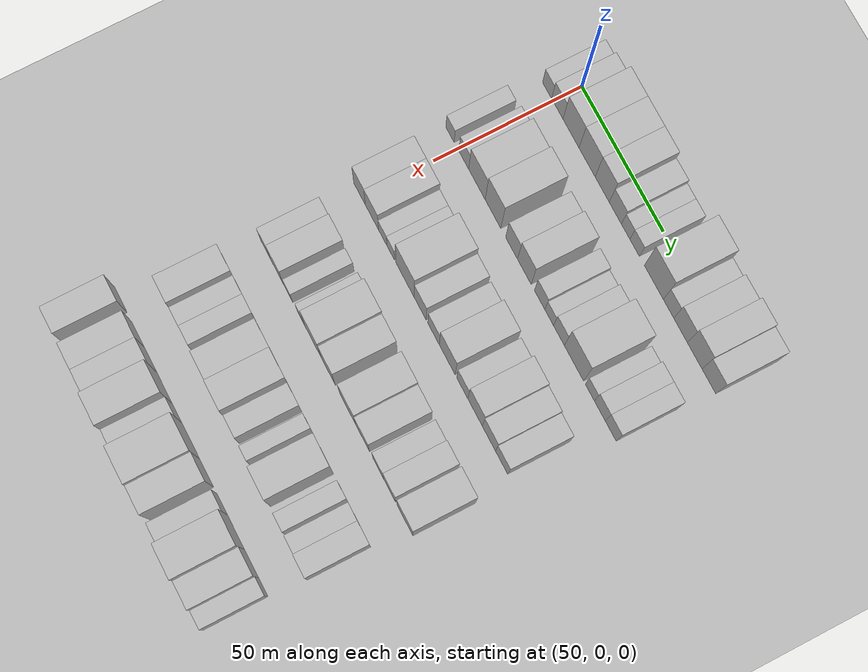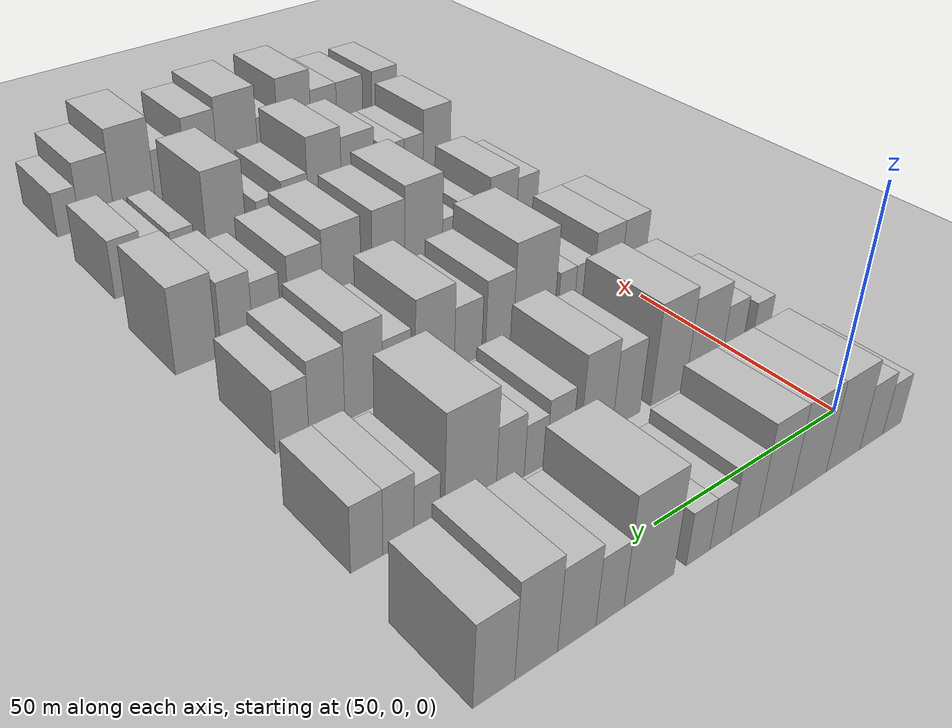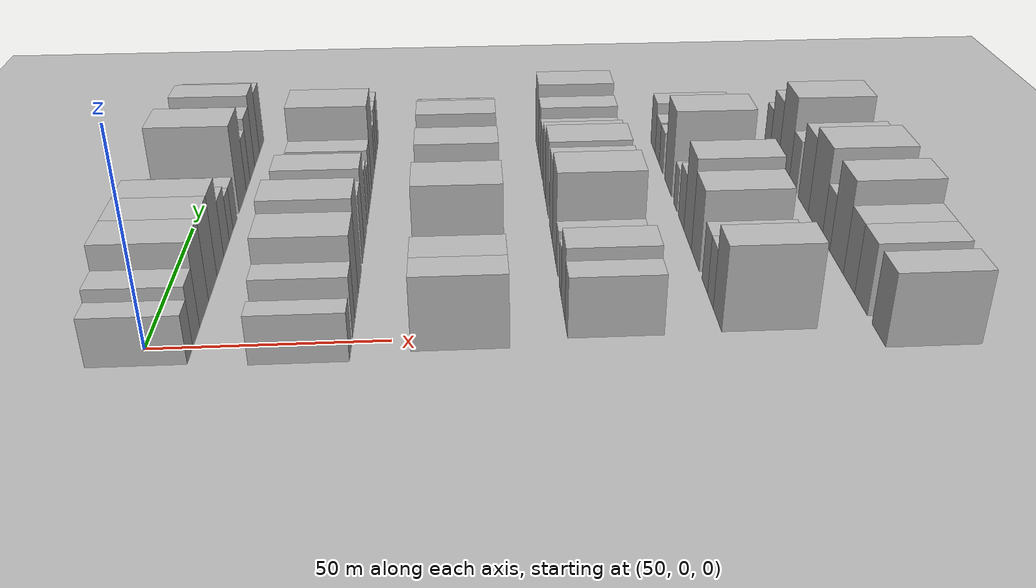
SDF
<sdf version="1.6">
 <world name="default">
  <include><name>ground_plane_1</name><uri>model://HANNAS_ground_plane</uri></include>
  <include>
   <name>ground_plane_2</name>
   <uri>model://HANNAS_ground_plane</uri>
   <pose>100 0 0  0 0 0</pose>
  </include>
  <model name="building_63">
   <static>1</static>
   <pose>50.0000 -3.6227 0 0.000000 0.000000 0.000000</pose>
   <link name="link">
    <pose>0 0 6.00 0 0 0</pose>
    <collision name="collision"><geometry><box><size>20.0000 5.6800 12.0000</size></box></geometry></collision>
    <visual name="visual">
     <cast_shadows>0</cast_shadows>
     <geometry><box><size>20.0000 5.6800 12.0000</size></box></geometry>
     <material>
      <script>
       <uri>model://HANNAS_wall/materials/scripts</uri>
       <uri>model://HANNAS_wall/materials/textures</uri>
       <name>vrc/HANNAS_wall</name>
      </script>
     </material>
    </visual>
   </link>
  </model>
  <model name="building_64">
   <static>1</static>
   <pose>50.0000 2.7702 0 0.000000 0.000000 0.000000</pose>
   <link name="link">
    <pose>0 0 7.50 0 0 0</pose>
    <collision name="collision"><geometry><box><size>20.0000 7.1057 15.0000</size></box></geometry></collision>
    <visual name="visual">
     <cast_shadows>0</cast_shadows>
     <geometry><box><size>20.0000 7.1057 15.0000</size></box></geometry>
     <material>
      <script>
       <uri>model://HANNAS_wall/materials/scripts</uri>
       <uri>model://HANNAS_wall/materials/textures</uri>
       <name>vrc/HANNAS_wall</name>
      </script>
     </material>
    </visual>
   </link>
  </model>
  <model name="building_65">
   <static>1</static>
   <pose>50.0000 11.3239 0 0.000000 0.000000 0.000000</pose>
   <link name="link">
    <pose>0 0 10.50 0 0 0</pose>
    <collision name="collision"><geometry><box><size>20.0000 10.0018 21.0000</size></box></geometry></collision>
    <visual name="visual">
     <cast_shadows>0</cast_shadows>
     <geometry><box><size>20.0000 10.0018 21.0000</size></box></geometry>
     <material>
      <script>
       <uri>model://HANNAS_wall/materials/scripts</uri>
       <uri>model://HANNAS_wall/materials/textures</uri>
       <name>vrc/HANNAS_wall</name>
      </script>
     </material>
    </visual>
   </link>
  </model>
  <model name="building_66">
   <static>1</static>
   <pose>50.0000 21.3238 0 0.000000 0.000000 0.000000</pose>
   <link name="link">
    <pose>0 0 10.50 0 0 0</pose>
    <collision name="collision"><geometry><box><size>20.0000 9.9979 21.0000</size></box></geometry></collision>
    <visual name="visual">
     <cast_shadows>0</cast_shadows>
     <geometry><box><size>20.0000 9.9979 21.0000</size></box></geometry>
     <material>
      <script>
       <uri>model://HANNAS_wall/materials/scripts</uri>
       <uri>model://HANNAS_wall/materials/textures</uri>
       <name>vrc/HANNAS_wall</name>
      </script>
     </material>
    </visual>
   </link>
  </model>
  <model name="building_67">
   <static>1</static>
   <pose>50.0000 30.6566 0 0.000000 0.000000 0.000000</pose>
   <link name="link">
    <pose>0 0 10.50 0 0 0</pose>
    <collision name="collision"><geometry><box><size>20.0000 8.6677 21.0000</size></box></geometry></collision>
    <visual name="visual">
     <cast_shadows>0</cast_shadows>
     <geometry><box><size>20.0000 8.6677 21.0000</size></box></geometry>
     <material>
      <script>
       <uri>model://HANNAS_wall/materials/scripts</uri>
       <uri>model://HANNAS_wall/materials/textures</uri>
       <name>vrc/HANNAS_wall</name>
      </script>
     </material>
    </visual>
   </link>
  </model>
  <model name="building_68">
   <static>1</static>
   <pose>50.0000 38.7011 0 0.000000 0.000000 0.000000</pose>
   <link name="link">
    <pose>0 0 7.50 0 0 0</pose>
    <collision name="collision"><geometry><box><size>20.0000 7.4212 15.0000</size></box></geometry></collision>
    <visual name="visual">
     <cast_shadows>0</cast_shadows>
     <geometry><box><size>20.0000 7.4212 15.0000</size></box></geometry>
     <material>
      <script>
       <uri>model://HANNAS_wall/materials/scripts</uri>
       <uri>model://HANNAS_wall/materials/textures</uri>
       <name>vrc/HANNAS_wall</name>
      </script>
     </material>
    </visual>
   </link>
  </model>
  <model name="building_69">
   <static>1</static>
   <pose>50.0000 44.9945 0 0.000000 0.000000 0.000000</pose>
   <link name="link">
    <pose>0 0 6.00 0 0 0</pose>
    <collision name="collision"><geometry><box><size>20.0000 5.1658 12.0000</size></box></geometry></collision>
    <visual name="visual">
     <cast_shadows>0</cast_shadows>
     <geometry><box><size>20.0000 5.1658 12.0000</size></box></geometry>
     <material>
      <script>
       <uri>model://HANNAS_wall/materials/scripts</uri>
       <uri>model://HANNAS_wall/materials/textures</uri>
       <name>vrc/HANNAS_wall</name>
      </script>
     </material>
    </visual>
   </link>
  </model>
  <model name="building_70">
   <static>1</static>
   <pose>50.0000 50.4644 0 0.000000 0.000000 0.000000</pose>
   <link name="link">
    <pose>0 0 6.00 0 0 0</pose>
    <collision name="collision"><geometry><box><size>20.0000 5.7740 12.0000</size></box></geometry></collision>
    <visual name="visual">
     <cast_shadows>0</cast_shadows>
     <geometry><box><size>20.0000 5.7740 12.0000</size></box></geometry>
     <material>
      <script>
       <uri>model://HANNAS_wall/materials/scripts</uri>
       <uri>model://HANNAS_wall/materials/textures</uri>
       <name>vrc/HANNAS_wall</name>
      </script>
     </material>
    </visual>
   </link>
  </model>
  <model name="building_71">
   <static>1</static>
   <pose>50.0000 62.0729 0 0.000000 0.000000 0.000000</pose>
   <link name="link">
    <pose>0 0 12.00 0 0 0</pose>
    <collision name="collision"><geometry><box><size>20.0000 11.4429 24.0000</size></box></geometry></collision>
    <visual name="visual">
     <cast_shadows>0</cast_shadows>
     <geometry><box><size>20.0000 11.4429 24.0000</size></box></geometry>
     <material>
      <script>
       <uri>model://HANNAS_wall/materials/scripts</uri>
       <uri>model://HANNAS_wall/materials/textures</uri>
       <name>vrc/HANNAS_wall</name>
      </script>
     </material>
    </visual>
   </link>
  </model>
  <model name="building_72">
   <static>1</static>
   <pose>50.0000 70.9119 0 0.000000 0.000000 0.000000</pose>
   <link name="link">
    <pose>0 0 7.50 0 0 0</pose>
    <collision name="collision"><geometry><box><size>20.0000 6.2350 15.0000</size></box></geometry></collision>
    <visual name="visual">
     <cast_shadows>0</cast_shadows>
     <geometry><box><size>20.0000 6.2350 15.0000</size></box></geometry>
     <material>
      <script>
       <uri>model://HANNAS_wall/materials/scripts</uri>
       <uri>model://HANNAS_wall/materials/textures</uri>
       <name>vrc/HANNAS_wall</name>
      </script>
     </material>
    </visual>
   </link>
  </model>
  <model name="building_73">
   <static>1</static>
   <pose>50.0000 78.0997 0 0.000000 0.000000 0.000000</pose>
   <link name="link">
    <pose>0 0 9.00 0 0 0</pose>
    <collision name="collision"><geometry><box><size>20.0000 8.1406 18.0000</size></box></geometry></collision>
    <visual name="visual">
     <cast_shadows>0</cast_shadows>
     <geometry><box><size>20.0000 8.1406 18.0000</size></box></geometry>
     <material>
      <script>
       <uri>model://HANNAS_wall/materials/scripts</uri>
       <uri>model://HANNAS_wall/materials/textures</uri>
       <name>vrc/HANNAS_wall</name>
      </script>
     </material>
    </visual>
   </link>
  </model>
  <model name="building_74">
   <static>1</static>
   <pose>50.0000 86.4870 0 0.000000 0.000000 0.000000</pose>
   <link name="link">
    <pose>0 0 10.50 0 0 0</pose>
    <collision name="collision"><geometry><box><size>20.0000 8.6339 21.0000</size></box></geometry></collision>
    <visual name="visual">
     <cast_shadows>0</cast_shadows>
     <geometry><box><size>20.0000 8.6339 21.0000</size></box></geometry>
     <material>
      <script>
       <uri>model://HANNAS_wall/materials/scripts</uri>
       <uri>model://HANNAS_wall/materials/textures</uri>
       <name>vrc/HANNAS_wall</name>
      </script>
     </material>
    </visual>
   </link>
  </model>
  <model name="building_75">
   <static>1</static>
   <pose>50.0000 94.8706 0 0.000000 0.000000 0.000000</pose>
   <link name="link">
    <pose>0 0 9.00 0 0 0</pose>
    <collision name="collision"><geometry><box><size>20.0000 8.1333 18.0000</size></box></geometry></collision>
    <visual name="visual">
     <cast_shadows>0</cast_shadows>
     <geometry><box><size>20.0000 8.1333 18.0000</size></box></geometry>
     <material>
      <script>
       <uri>model://HANNAS_wall/materials/scripts</uri>
       <uri>model://HANNAS_wall/materials/textures</uri>
       <name>vrc/HANNAS_wall</name>
      </script>
     </material>
    </visual>
   </link>
  </model>
  <model name="building_179">
   <static>1</static>
   <pose>82.0000 -4.7438 0 0.000000 0.000000 0.000000</pose>
   <link name="link">
    <pose>0 0 6.00 0 0 0</pose>
    <collision name="collision"><geometry><box><size>20.0000 5.2929 12.0000</size></box></geometry></collision>
    <visual name="visual">
     <cast_shadows>0</cast_shadows>
     <geometry><box><size>20.0000 5.2929 12.0000</size></box></geometry>
     <material>
      <script>
       <uri>model://HANNAS_wall/materials/scripts</uri>
       <uri>model://HANNAS_wall/materials/textures</uri>
       <name>vrc/HANNAS_wall</name>
      </script>
     </material>
    </visual>
   </link>
  </model>
  <model name="building_180">
   <static>1</static>
   <pose>82.0000 4.0170 0 0.000000 0.000000 0.000000</pose>
   <link name="link">
    <pose>0 0 7.50 0 0 0</pose>
    <collision name="collision"><geometry><box><size>20.0000 6.2286 15.0000</size></box></geometry></collision>
    <visual name="visual">
     <cast_shadows>0</cast_shadows>
     <geometry><box><size>20.0000 6.2286 15.0000</size></box></geometry>
     <material>
      <script>
       <uri>model://HANNAS_wall/materials/scripts</uri>
       <uri>model://HANNAS_wall/materials/textures</uri>
       <name>vrc/HANNAS_wall</name>
      </script>
     </material>
    </visual>
   </link>
  </model>
  <model name="building_181">
   <static>1</static>
   <pose>82.0000 12.3256 0 0.000000 0.000000 0.000000</pose>
   <link name="link">
    <pose>0 0 10.50 0 0 0</pose>
    <collision name="collision"><geometry><box><size>20.0000 10.3888 21.0000</size></box></geometry></collision>
    <visual name="visual">
     <cast_shadows>0</cast_shadows>
     <geometry><box><size>20.0000 10.3888 21.0000</size></box></geometry>
     <material>
      <script>
       <uri>model://HANNAS_wall/materials/scripts</uri>
       <uri>model://HANNAS_wall/materials/textures</uri>
       <name>vrc/HANNAS_wall</name>
      </script>
     </material>
    </visual>
   </link>
  </model>
  <model name="building_182">
   <static>1</static>
   <pose>82.0000 22.4109 0 0.000000 0.000000 0.000000</pose>
   <link name="link">
    <pose>0 0 12.00 0 0 0</pose>
    <collision name="collision"><geometry><box><size>20.0000 9.7818 24.0000</size></box></geometry></collision>
    <visual name="visual">
     <cast_shadows>0</cast_shadows>
     <geometry><box><size>20.0000 9.7818 24.0000</size></box></geometry>
     <material>
      <script>
       <uri>model://HANNAS_wall/materials/scripts</uri>
       <uri>model://HANNAS_wall/materials/textures</uri>
       <name>vrc/HANNAS_wall</name>
      </script>
     </material>
    </visual>
   </link>
  </model>
  <model name="building_183">
   <static>1</static>
   <pose>82.0000 33.9871 0 0.000000 0.000000 0.000000</pose>
   <link name="link">
    <pose>0 0 9.00 0 0 0</pose>
    <collision name="collision"><geometry><box><size>20.0000 7.3706 18.0000</size></box></geometry></collision>
    <visual name="visual">
     <cast_shadows>0</cast_shadows>
     <geometry><box><size>20.0000 7.3706 18.0000</size></box></geometry>
     <material>
      <script>
       <uri>model://HANNAS_wall/materials/scripts</uri>
       <uri>model://HANNAS_wall/materials/textures</uri>
       <name>vrc/HANNAS_wall</name>
      </script>
     </material>
    </visual>
   </link>
  </model>
  <model name="building_184">
   <static>1</static>
   <pose>82.0000 41.9134 0 0.000000 0.000000 0.000000</pose>
   <link name="link">
    <pose>0 0 10.50 0 0 0</pose>
    <collision name="collision"><geometry><box><size>20.0000 8.4819 21.0000</size></box></geometry></collision>
    <visual name="visual">
     <cast_shadows>0</cast_shadows>
     <geometry><box><size>20.0000 8.4819 21.0000</size></box></geometry>
     <material>
      <script>
       <uri>model://HANNAS_wall/materials/scripts</uri>
       <uri>model://HANNAS_wall/materials/textures</uri>
       <name>vrc/HANNAS_wall</name>
      </script>
     </material>
    </visual>
   </link>
  </model>
  <model name="building_185">
   <static>1</static>
   <pose>82.0000 51.3537 0 0.000000 0.000000 0.000000</pose>
   <link name="link">
    <pose>0 0 7.50 0 0 0</pose>
    <collision name="collision"><geometry><box><size>20.0000 6.3988 15.0000</size></box></geometry></collision>
    <visual name="visual">
     <cast_shadows>0</cast_shadows>
     <geometry><box><size>20.0000 6.3988 15.0000</size></box></geometry>
     <material>
      <script>
       <uri>model://HANNAS_wall/materials/scripts</uri>
       <uri>model://HANNAS_wall/materials/textures</uri>
       <name>vrc/HANNAS_wall</name>
      </script>
     </material>
    </visual>
   </link>
  </model>
  <model name="building_186">
   <static>1</static>
   <pose>82.0000 57.2346 0 0.000000 0.000000 0.000000</pose>
   <link name="link">
    <pose>0 0 6.00 0 0 0</pose>
    <collision name="collision"><geometry><box><size>20.0000 5.3629 12.0000</size></box></geometry></collision>
    <visual name="visual">
     <cast_shadows>0</cast_shadows>
     <geometry><box><size>20.0000 5.3629 12.0000</size></box></geometry>
     <material>
      <script>
       <uri>model://HANNAS_wall/materials/scripts</uri>
       <uri>model://HANNAS_wall/materials/textures</uri>
       <name>vrc/HANNAS_wall</name>
      </script>
     </material>
    </visual>
   </link>
  </model>
  <model name="building_187">
   <static>1</static>
   <pose>82.0000 63.2283 0 0.000000 0.000000 0.000000</pose>
   <link name="link">
    <pose>0 0 7.50 0 0 0</pose>
    <collision name="collision"><geometry><box><size>20.0000 6.6245 15.0000</size></box></geometry></collision>
    <visual name="visual">
     <cast_shadows>0</cast_shadows>
     <geometry><box><size>20.0000 6.6245 15.0000</size></box></geometry>
     <material>
      <script>
       <uri>model://HANNAS_wall/materials/scripts</uri>
       <uri>model://HANNAS_wall/materials/textures</uri>
       <name>vrc/HANNAS_wall</name>
      </script>
     </material>
    </visual>
   </link>
  </model>
  <model name="building_188">
   <static>1</static>
   <pose>82.0000 72.3681 0 0.000000 0.000000 0.000000</pose>
   <link name="link">
    <pose>0 0 12.00 0 0 0</pose>
    <collision name="collision"><geometry><box><size>20.0000 11.6551 24.0000</size></box></geometry></collision>
    <visual name="visual">
     <cast_shadows>0</cast_shadows>
     <geometry><box><size>20.0000 11.6551 24.0000</size></box></geometry>
     <material>
      <script>
       <uri>model://HANNAS_wall/materials/scripts</uri>
       <uri>model://HANNAS_wall/materials/textures</uri>
       <name>vrc/HANNAS_wall</name>
      </script>
     </material>
    </visual>
   </link>
  </model>
  <model name="building_189">
   <static>1</static>
   <pose>82.0000 81.9700 0 0.000000 0.000000 0.000000</pose>
   <link name="link">
    <pose>0 0 6.00 0 0 0</pose>
    <collision name="collision"><geometry><box><size>20.0000 5.5486 12.0000</size></box></geometry></collision>
    <visual name="visual">
     <cast_shadows>0</cast_shadows>
     <geometry><box><size>20.0000 5.5486 12.0000</size></box></geometry>
     <material>
      <script>
       <uri>model://HANNAS_wall/materials/scripts</uri>
       <uri>model://HANNAS_wall/materials/textures</uri>
       <name>vrc/HANNAS_wall</name>
      </script>
     </material>
    </visual>
   </link>
  </model>
  <model name="building_190">
   <static>1</static>
   <pose>82.0000 87.9847 0 0.000000 0.000000 0.000000</pose>
   <link name="link">
    <pose>0 0 7.50 0 0 0</pose>
    <collision name="collision"><geometry><box><size>20.0000 6.4809 15.0000</size></box></geometry></collision>
    <visual name="visual">
     <cast_shadows>0</cast_shadows>
     <geometry><box><size>20.0000 6.4809 15.0000</size></box></geometry>
     <material>
      <script>
       <uri>model://HANNAS_wall/materials/scripts</uri>
       <uri>model://HANNAS_wall/materials/textures</uri>
       <name>vrc/HANNAS_wall</name>
      </script>
     </material>
    </visual>
   </link>
  </model>
  <model name="building_191">
   <static>1</static>
   <pose>82.0000 94.4890 0 0.000000 0.000000 0.000000</pose>
   <link name="link">
    <pose>0 0 7.50 0 0 0</pose>
    <collision name="collision"><geometry><box><size>20.0000 6.5277 15.0000</size></box></geometry></collision>
    <visual name="visual">
     <cast_shadows>0</cast_shadows>
     <geometry><box><size>20.0000 6.5277 15.0000</size></box></geometry>
     <material>
      <script>
       <uri>model://HANNAS_wall/materials/scripts</uri>
       <uri>model://HANNAS_wall/materials/textures</uri>
       <name>vrc/HANNAS_wall</name>
      </script>
     </material>
    </visual>
   </link>
  </model>
  <model name="building_295">
   <static>1</static>
   <pose>114.0000 -0.9416 0 0.000000 0.000000 0.000000</pose>
   <link name="link">
    <pose>0 0 9.00 0 0 0</pose>
    <collision name="collision"><geometry><box><size>20.0000 7.4630 18.0000</size></box></geometry></collision>
    <visual name="visual">
     <cast_shadows>0</cast_shadows>
     <geometry><box><size>20.0000 7.4630 18.0000</size></box></geometry>
     <material>
      <script>
       <uri>model://HANNAS_wall/materials/scripts</uri>
       <uri>model://HANNAS_wall/materials/textures</uri>
       <name>vrc/HANNAS_wall</name>
      </script>
     </material>
    </visual>
   </link>
  </model>
  <model name="building_296">
   <static>1</static>
   <pose>114.0000 7.0339 0 0.000000 0.000000 0.000000</pose>
   <link name="link">
    <pose>0 0 9.00 0 0 0</pose>
    <collision name="collision"><geometry><box><size>20.0000 8.4879 18.0000</size></box></geometry></collision>
    <visual name="visual">
     <cast_shadows>0</cast_shadows>
     <geometry><box><size>20.0000 8.4879 18.0000</size></box></geometry>
     <material>
      <script>
       <uri>model://HANNAS_wall/materials/scripts</uri>
       <uri>model://HANNAS_wall/materials/textures</uri>
       <name>vrc/HANNAS_wall</name>
      </script>
     </material>
    </visual>
   </link>
  </model>
  <model name="building_297">
   <static>1</static>
   <pose>114.0000 13.9366 0 0.000000 0.000000 0.000000</pose>
   <link name="link">
    <pose>0 0 6.00 0 0 0</pose>
    <collision name="collision"><geometry><box><size>20.0000 5.3176 12.0000</size></box></geometry></collision>
    <visual name="visual">
     <cast_shadows>0</cast_shadows>
     <geometry><box><size>20.0000 5.3176 12.0000</size></box></geometry>
     <material>
      <script>
       <uri>model://HANNAS_wall/materials/scripts</uri>
       <uri>model://HANNAS_wall/materials/textures</uri>
       <name>vrc/HANNAS_wall</name>
      </script>
     </material>
    </visual>
   </link>
  </model>
  <model name="building_298">
   <static>1</static>
   <pose>114.0000 19.0052 0 0.000000 0.000000 0.000000</pose>
   <link name="link">
    <pose>0 0 6.00 0 0 0</pose>
    <collision name="collision"><geometry><box><size>20.0000 4.8196 12.0000</size></box></geometry></collision>
    <visual name="visual">
     <cast_shadows>0</cast_shadows>
     <geometry><box><size>20.0000 4.8196 12.0000</size></box></geometry>
     <material>
      <script>
       <uri>model://HANNAS_wall/materials/scripts</uri>
       <uri>model://HANNAS_wall/materials/textures</uri>
       <name>vrc/HANNAS_wall</name>
      </script>
     </material>
    </visual>
   </link>
  </model>
  <model name="building_299">
   <static>1</static>
   <pose>114.0000 28.2403 0 0.000000 0.000000 0.000000</pose>
   <link name="link">
    <pose>0 0 12.00 0 0 0</pose>
    <collision name="collision"><geometry><box><size>20.0000 11.6507 24.0000</size></box></geometry></collision>
    <visual name="visual">
     <cast_shadows>0</cast_shadows>
     <geometry><box><size>20.0000 11.6507 24.0000</size></box></geometry>
     <material>
      <script>
       <uri>model://HANNAS_wall/materials/scripts</uri>
       <uri>model://HANNAS_wall/materials/textures</uri>
       <name>vrc/HANNAS_wall</name>
      </script>
     </material>
    </visual>
   </link>
  </model>
  <model name="building_300">
   <static>1</static>
   <pose>114.0000 37.7798 0 0.000000 0.000000 0.000000</pose>
   <link name="link">
    <pose>0 0 9.00 0 0 0</pose>
    <collision name="collision"><geometry><box><size>20.0000 7.4282 18.0000</size></box></geometry></collision>
    <visual name="visual">
     <cast_shadows>0</cast_shadows>
     <geometry><box><size>20.0000 7.4282 18.0000</size></box></geometry>
     <material>
      <script>
       <uri>model://HANNAS_wall/materials/scripts</uri>
       <uri>model://HANNAS_wall/materials/textures</uri>
       <name>vrc/HANNAS_wall</name>
      </script>
     </material>
    </visual>
   </link>
  </model>
  <model name="building_301">
   <static>1</static>
   <pose>114.0000 46.0904 0 0.000000 0.000000 0.000000</pose>
   <link name="link">
    <pose>0 0 7.50 0 0 0</pose>
    <collision name="collision"><geometry><box><size>20.0000 7.1931 15.0000</size></box></geometry></collision>
    <visual name="visual">
     <cast_shadows>0</cast_shadows>
     <geometry><box><size>20.0000 7.1931 15.0000</size></box></geometry>
     <material>
      <script>
       <uri>model://HANNAS_wall/materials/scripts</uri>
       <uri>model://HANNAS_wall/materials/textures</uri>
       <name>vrc/HANNAS_wall</name>
      </script>
     </material>
    </visual>
   </link>
  </model>
  <model name="building_302">
   <static>1</static>
   <pose>114.0000 54.6176 0 0.000000 0.000000 0.000000</pose>
   <link name="link">
    <pose>0 0 10.50 0 0 0</pose>
    <collision name="collision"><geometry><box><size>20.0000 9.8612 21.0000</size></box></geometry></collision>
    <visual name="visual">
     <cast_shadows>0</cast_shadows>
     <geometry><box><size>20.0000 9.8612 21.0000</size></box></geometry>
     <material>
      <script>
       <uri>model://HANNAS_wall/materials/scripts</uri>
       <uri>model://HANNAS_wall/materials/textures</uri>
       <name>vrc/HANNAS_wall</name>
      </script>
     </material>
    </visual>
   </link>
  </model>
  <model name="building_303">
   <static>1</static>
   <pose>114.0000 63.9751 0 0.000000 0.000000 0.000000</pose>
   <link name="link">
    <pose>0 0 7.50 0 0 0</pose>
    <collision name="collision"><geometry><box><size>20.0000 6.8538 15.0000</size></box></geometry></collision>
    <visual name="visual">
     <cast_shadows>0</cast_shadows>
     <geometry><box><size>20.0000 6.8538 15.0000</size></box></geometry>
     <material>
      <script>
       <uri>model://HANNAS_wall/materials/scripts</uri>
       <uri>model://HANNAS_wall/materials/textures</uri>
       <name>vrc/HANNAS_wall</name>
      </script>
     </material>
    </visual>
   </link>
  </model>
  <model name="building_304">
   <static>1</static>
   <pose>114.0000 71.8628 0 0.000000 0.000000 0.000000</pose>
   <link name="link">
    <pose>0 0 10.50 0 0 0</pose>
    <collision name="collision"><geometry><box><size>20.0000 8.9214 21.0000</size></box></geometry></collision>
    <visual name="visual">
     <cast_shadows>0</cast_shadows>
     <geometry><box><size>20.0000 8.9214 21.0000</size></box></geometry>
     <material>
      <script>
       <uri>model://HANNAS_wall/materials/scripts</uri>
       <uri>model://HANNAS_wall/materials/textures</uri>
       <name>vrc/HANNAS_wall</name>
      </script>
     </material>
    </visual>
   </link>
  </model>
  <model name="building_305">
   <static>1</static>
   <pose>114.0000 80.3734 0 0.000000 0.000000 0.000000</pose>
   <link name="link">
    <pose>0 0 9.00 0 0 0</pose>
    <collision name="collision"><geometry><box><size>20.0000 8.0999 18.0000</size></box></geometry></collision>
    <visual name="visual">
     <cast_shadows>0</cast_shadows>
     <geometry><box><size>20.0000 8.0999 18.0000</size></box></geometry>
     <material>
      <script>
       <uri>model://HANNAS_wall/materials/scripts</uri>
       <uri>model://HANNAS_wall/materials/textures</uri>
       <name>vrc/HANNAS_wall</name>
      </script>
     </material>
    </visual>
   </link>
  </model>
  <model name="building_306">
   <static>1</static>
   <pose>114.0000 88.1219 0 0.000000 0.000000 0.000000</pose>
   <link name="link">
    <pose>0 0 7.50 0 0 0</pose>
    <collision name="collision"><geometry><box><size>20.0000 7.3971 15.0000</size></box></geometry></collision>
    <visual name="visual">
     <cast_shadows>0</cast_shadows>
     <geometry><box><size>20.0000 7.3971 15.0000</size></box></geometry>
     <material>
      <script>
       <uri>model://HANNAS_wall/materials/scripts</uri>
       <uri>model://HANNAS_wall/materials/textures</uri>
       <name>vrc/HANNAS_wall</name>
      </script>
     </material>
    </visual>
   </link>
  </model>
  <model name="building_417">
   <static>1</static>
   <pose>146.0000 1.3301 0 0.000000 0.000000 0.000000</pose>
   <link name="link">
    <pose>0 0 7.50 0 0 0</pose>
    <collision name="collision"><geometry><box><size>20.0000 6.4514 15.0000</size></box></geometry></collision>
    <visual name="visual">
     <cast_shadows>0</cast_shadows>
     <geometry><box><size>20.0000 6.4514 15.0000</size></box></geometry>
     <material>
      <script>
       <uri>model://HANNAS_wall/materials/scripts</uri>
       <uri>model://HANNAS_wall/materials/textures</uri>
       <name>vrc/HANNAS_wall</name>
      </script>
     </material>
    </visual>
   </link>
  </model>
  <model name="building_418">
   <static>1</static>
   <pose>146.0000 8.8479 0 0.000000 0.000000 0.000000</pose>
   <link name="link">
    <pose>0 0 9.00 0 0 0</pose>
    <collision name="collision"><geometry><box><size>20.0000 8.5842 18.0000</size></box></geometry></collision>
    <visual name="visual">
     <cast_shadows>0</cast_shadows>
     <geometry><box><size>20.0000 8.5842 18.0000</size></box></geometry>
     <material>
      <script>
       <uri>model://HANNAS_wall/materials/scripts</uri>
       <uri>model://HANNAS_wall/materials/textures</uri>
       <name>vrc/HANNAS_wall</name>
      </script>
     </material>
    </visual>
   </link>
  </model>
  <model name="building_419">
   <static>1</static>
   <pose>146.0000 16.6154 0 0.000000 0.000000 0.000000</pose>
   <link name="link">
    <pose>0 0 6.00 0 0 0</pose>
    <collision name="collision"><geometry><box><size>20.0000 4.9506 12.0000</size></box></geometry></collision>
    <visual name="visual">
     <cast_shadows>0</cast_shadows>
     <geometry><box><size>20.0000 4.9506 12.0000</size></box></geometry>
     <material>
      <script>
       <uri>model://HANNAS_wall/materials/scripts</uri>
       <uri>model://HANNAS_wall/materials/textures</uri>
       <name>vrc/HANNAS_wall</name>
      </script>
     </material>
    </visual>
   </link>
  </model>
  <model name="building_420">
   <static>1</static>
   <pose>146.0000 24.5067 0 0.000000 0.000000 0.000000</pose>
   <link name="link">
    <pose>0 0 6.00 0 0 0</pose>
    <collision name="collision"><geometry><box><size>20.0000 4.8321 12.0000</size></box></geometry></collision>
    <visual name="visual">
     <cast_shadows>0</cast_shadows>
     <geometry><box><size>20.0000 4.8321 12.0000</size></box></geometry>
     <material>
      <script>
       <uri>model://HANNAS_wall/materials/scripts</uri>
       <uri>model://HANNAS_wall/materials/textures</uri>
       <name>vrc/HANNAS_wall</name>
      </script>
     </material>
    </visual>
   </link>
  </model>
  <model name="building_421">
   <static>1</static>
   <pose>146.0000 32.2161 0 0.000000 0.000000 0.000000</pose>
   <link name="link">
    <pose>0 0 12.00 0 0 0</pose>
    <collision name="collision"><geometry><box><size>20.0000 10.5866 24.0000</size></box></geometry></collision>
    <visual name="visual">
     <cast_shadows>0</cast_shadows>
     <geometry><box><size>20.0000 10.5866 24.0000</size></box></geometry>
     <material>
      <script>
       <uri>model://HANNAS_wall/materials/scripts</uri>
       <uri>model://HANNAS_wall/materials/textures</uri>
       <name>vrc/HANNAS_wall</name>
      </script>
     </material>
    </visual>
   </link>
  </model>
  <model name="building_422">
   <static>1</static>
   <pose>146.0000 41.9563 0 0.000000 0.000000 0.000000</pose>
   <link name="link">
    <pose>0 0 10.50 0 0 0</pose>
    <collision name="collision"><geometry><box><size>20.0000 8.8937 21.0000</size></box></geometry></collision>
    <visual name="visual">
     <cast_shadows>0</cast_shadows>
     <geometry><box><size>20.0000 8.8937 21.0000</size></box></geometry>
     <material>
      <script>
       <uri>model://HANNAS_wall/materials/scripts</uri>
       <uri>model://HANNAS_wall/materials/textures</uri>
       <name>vrc/HANNAS_wall</name>
      </script>
     </material>
    </visual>
   </link>
  </model>
  <model name="building_423">
   <static>1</static>
   <pose>146.0000 54.3627 0 0.000000 0.000000 0.000000</pose>
   <link name="link">
    <pose>0 0 10.50 0 0 0</pose>
    <collision name="collision"><geometry><box><size>20.0000 9.9191 21.0000</size></box></geometry></collision>
    <visual name="visual">
     <cast_shadows>0</cast_shadows>
     <geometry><box><size>20.0000 9.9191 21.0000</size></box></geometry>
     <material>
      <script>
       <uri>model://HANNAS_wall/materials/scripts</uri>
       <uri>model://HANNAS_wall/materials/textures</uri>
       <name>vrc/HANNAS_wall</name>
      </script>
     </material>
    </visual>
   </link>
  </model>
  <model name="building_424">
   <static>1</static>
   <pose>146.0000 63.6448 0 0.000000 0.000000 0.000000</pose>
   <link name="link">
    <pose>0 0 9.00 0 0 0</pose>
    <collision name="collision"><geometry><box><size>20.0000 8.6450 18.0000</size></box></geometry></collision>
    <visual name="visual">
     <cast_shadows>0</cast_shadows>
     <geometry><box><size>20.0000 8.6450 18.0000</size></box></geometry>
     <material>
      <script>
       <uri>model://HANNAS_wall/materials/scripts</uri>
       <uri>model://HANNAS_wall/materials/textures</uri>
       <name>vrc/HANNAS_wall</name>
      </script>
     </material>
    </visual>
   </link>
  </model>
  <model name="building_425">
   <static>1</static>
   <pose>146.0000 73.3686 0 0.000000 0.000000 0.000000</pose>
   <link name="link">
    <pose>0 0 7.50 0 0 0</pose>
    <collision name="collision"><geometry><box><size>20.0000 6.8025 15.0000</size></box></geometry></collision>
    <visual name="visual">
     <cast_shadows>0</cast_shadows>
     <geometry><box><size>20.0000 6.8025 15.0000</size></box></geometry>
     <material>
      <script>
       <uri>model://HANNAS_wall/materials/scripts</uri>
       <uri>model://HANNAS_wall/materials/textures</uri>
       <name>vrc/HANNAS_wall</name>
      </script>
     </material>
    </visual>
   </link>
  </model>
  <model name="building_426">
   <static>1</static>
   <pose>146.0000 80.5076 0 0.000000 0.000000 0.000000</pose>
   <link name="link">
    <pose>0 0 9.00 0 0 0</pose>
    <collision name="collision"><geometry><box><size>20.0000 7.4755 18.0000</size></box></geometry></collision>
    <visual name="visual">
     <cast_shadows>0</cast_shadows>
     <geometry><box><size>20.0000 7.4755 18.0000</size></box></geometry>
     <material>
      <script>
       <uri>model://HANNAS_wall/materials/scripts</uri>
       <uri>model://HANNAS_wall/materials/textures</uri>
       <name>vrc/HANNAS_wall</name>
      </script>
     </material>
    </visual>
   </link>
  </model>
  <model name="building_427">
   <static>1</static>
   <pose>146.0000 90.0593 0 0.000000 0.000000 0.000000</pose>
   <link name="link">
    <pose>0 0 10.50 0 0 0</pose>
    <collision name="collision"><geometry><box><size>20.0000 9.6279 21.0000</size></box></geometry></collision>
    <visual name="visual">
     <cast_shadows>0</cast_shadows>
     <geometry><box><size>20.0000 9.6279 21.0000</size></box></geometry>
     <material>
      <script>
       <uri>model://HANNAS_wall/materials/scripts</uri>
       <uri>model://HANNAS_wall/materials/textures</uri>
       <name>vrc/HANNAS_wall</name>
      </script>
     </material>
    </visual>
   </link>
  </model>
  <model name="building_539">
   <static>1</static>
   <pose>178.0000 2.8589 0 0.000000 0.000000 0.000000</pose>
   <link name="link">
    <pose>0 0 10.50 0 0 0</pose>
    <collision name="collision"><geometry><box><size>20.0000 8.6727 21.0000</size></box></geometry></collision>
    <visual name="visual">
     <cast_shadows>0</cast_shadows>
     <geometry><box><size>20.0000 8.6727 21.0000</size></box></geometry>
     <material>
      <script>
       <uri>model://HANNAS_wall/materials/scripts</uri>
       <uri>model://HANNAS_wall/materials/textures</uri>
       <name>vrc/HANNAS_wall</name>
      </script>
     </material>
    </visual>
   </link>
  </model>
  <model name="building_540">
   <static>1</static>
   <pose>178.0000 10.2027 0 0.000000 0.000000 0.000000</pose>
   <link name="link">
    <pose>0 0 7.50 0 0 0</pose>
    <collision name="collision"><geometry><box><size>20.0000 6.0148 15.0000</size></box></geometry></collision>
    <visual name="visual">
     <cast_shadows>0</cast_shadows>
     <geometry><box><size>20.0000 6.0148 15.0000</size></box></geometry>
     <material>
      <script>
       <uri>model://HANNAS_wall/materials/scripts</uri>
       <uri>model://HANNAS_wall/materials/textures</uri>
       <name>vrc/HANNAS_wall</name>
      </script>
     </material>
    </visual>
   </link>
  </model>
  <model name="building_541">
   <static>1</static>
   <pose>178.0000 16.2909 0 0.000000 0.000000 0.000000</pose>
   <link name="link">
    <pose>0 0 7.50 0 0 0</pose>
    <collision name="collision"><geometry><box><size>20.0000 6.1617 15.0000</size></box></geometry></collision>
    <visual name="visual">
     <cast_shadows>0</cast_shadows>
     <geometry><box><size>20.0000 6.1617 15.0000</size></box></geometry>
     <material>
      <script>
       <uri>model://HANNAS_wall/materials/scripts</uri>
       <uri>model://HANNAS_wall/materials/textures</uri>
       <name>vrc/HANNAS_wall</name>
      </script>
     </material>
    </visual>
   </link>
  </model>
  <model name="building_542">
   <static>1</static>
   <pose>178.0000 27.1900 0 0.000000 0.000000 0.000000</pose>
   <link name="link">
    <pose>0 0 10.50 0 0 0</pose>
    <collision name="collision"><geometry><box><size>20.0000 9.6365 21.0000</size></box></geometry></collision>
    <visual name="visual">
     <cast_shadows>0</cast_shadows>
     <geometry><box><size>20.0000 9.6365 21.0000</size></box></geometry>
     <material>
      <script>
       <uri>model://HANNAS_wall/materials/scripts</uri>
       <uri>model://HANNAS_wall/materials/textures</uri>
       <name>vrc/HANNAS_wall</name>
      </script>
     </material>
    </visual>
   </link>
  </model>
  <model name="building_543">
   <static>1</static>
   <pose>178.0000 36.8320 0 0.000000 0.000000 0.000000</pose>
   <link name="link">
    <pose>0 0 12.00 0 0 0</pose>
    <collision name="collision"><geometry><box><size>20.0000 9.6475 24.0000</size></box></geometry></collision>
    <visual name="visual">
     <cast_shadows>0</cast_shadows>
     <geometry><box><size>20.0000 9.6475 24.0000</size></box></geometry>
     <material>
      <script>
       <uri>model://HANNAS_wall/materials/scripts</uri>
       <uri>model://HANNAS_wall/materials/textures</uri>
       <name>vrc/HANNAS_wall</name>
      </script>
     </material>
    </visual>
   </link>
  </model>
  <model name="building_544">
   <static>1</static>
   <pose>178.0000 45.2799 0 0.000000 0.000000 0.000000</pose>
   <link name="link">
    <pose>0 0 7.50 0 0 0</pose>
    <collision name="collision"><geometry><box><size>20.0000 7.2482 15.0000</size></box></geometry></collision>
    <visual name="visual">
     <cast_shadows>0</cast_shadows>
     <geometry><box><size>20.0000 7.2482 15.0000</size></box></geometry>
     <material>
      <script>
       <uri>model://HANNAS_wall/materials/scripts</uri>
       <uri>model://HANNAS_wall/materials/textures</uri>
       <name>vrc/HANNAS_wall</name>
      </script>
     </material>
    </visual>
   </link>
  </model>
  <model name="building_545">
   <static>1</static>
   <pose>178.0000 53.3096 0 0.000000 0.000000 0.000000</pose>
   <link name="link">
    <pose>0 0 6.00 0 0 0</pose>
    <collision name="collision"><geometry><box><size>20.0000 4.8113 12.0000</size></box></geometry></collision>
    <visual name="visual">
     <cast_shadows>0</cast_shadows>
     <geometry><box><size>20.0000 4.8113 12.0000</size></box></geometry>
     <material>
      <script>
       <uri>model://HANNAS_wall/materials/scripts</uri>
       <uri>model://HANNAS_wall/materials/textures</uri>
       <name>vrc/HANNAS_wall</name>
      </script>
     </material>
    </visual>
   </link>
  </model>
  <model name="building_546">
   <static>1</static>
   <pose>178.0000 63.8551 0 0.000000 0.000000 0.000000</pose>
   <link name="link">
    <pose>0 0 12.00 0 0 0</pose>
    <collision name="collision"><geometry><box><size>20.0000 10.2797 24.0000</size></box></geometry></collision>
    <visual name="visual">
     <cast_shadows>0</cast_shadows>
     <geometry><box><size>20.0000 10.2797 24.0000</size></box></geometry>
     <material>
      <script>
       <uri>model://HANNAS_wall/materials/scripts</uri>
       <uri>model://HANNAS_wall/materials/textures</uri>
       <name>vrc/HANNAS_wall</name>
      </script>
     </material>
    </visual>
   </link>
  </model>
  <model name="building_547">
   <static>1</static>
   <pose>178.0000 74.9367 0 0.000000 0.000000 0.000000</pose>
   <link name="link">
    <pose>0 0 6.00 0 0 0</pose>
    <collision name="collision"><geometry><box><size>20.0000 5.8835 12.0000</size></box></geometry></collision>
    <visual name="visual">
     <cast_shadows>0</cast_shadows>
     <geometry><box><size>20.0000 5.8835 12.0000</size></box></geometry>
     <material>
      <script>
       <uri>model://HANNAS_wall/materials/scripts</uri>
       <uri>model://HANNAS_wall/materials/textures</uri>
       <name>vrc/HANNAS_wall</name>
      </script>
     </material>
    </visual>
   </link>
  </model>
  <model name="building_548">
   <static>1</static>
   <pose>178.0000 81.8564 0 0.000000 0.000000 0.000000</pose>
   <link name="link">
    <pose>0 0 6.00 0 0 0</pose>
    <collision name="collision"><geometry><box><size>20.0000 5.9559 12.0000</size></box></geometry></collision>
    <visual name="visual">
     <cast_shadows>0</cast_shadows>
     <geometry><box><size>20.0000 5.9559 12.0000</size></box></geometry>
     <material>
      <script>
       <uri>model://HANNAS_wall/materials/scripts</uri>
       <uri>model://HANNAS_wall/materials/textures</uri>
       <name>vrc/HANNAS_wall</name>
      </script>
     </material>
    </visual>
   </link>
  </model>
  <model name="building_549">
   <static>1</static>
   <pose>178.0000 88.5213 0 0.000000 0.000000 0.000000</pose>
   <link name="link">
    <pose>0 0 7.50 0 0 0</pose>
    <collision name="collision"><geometry><box><size>20.0000 7.3738 15.0000</size></box></geometry></collision>
    <visual name="visual">
     <cast_shadows>0</cast_shadows>
     <geometry><box><size>20.0000 7.3738 15.0000</size></box></geometry>
     <material>
      <script>
       <uri>model://HANNAS_wall/materials/scripts</uri>
       <uri>model://HANNAS_wall/materials/textures</uri>
       <name>vrc/HANNAS_wall</name>
      </script>
     </material>
    </visual>
   </link>
  </model>
  <model name="building_652">
   <static>1</static>
   <pose>210.0000 -4.6104 0 0.000000 0.000000 0.000000</pose>
   <link name="link">
    <pose>0 0 9.00 0 0 0</pose>
    <collision name="collision"><geometry><box><size>20.0000 8.5112 18.0000</size></box></geometry></collision>
    <visual name="visual">
     <cast_shadows>0</cast_shadows>
     <geometry><box><size>20.0000 8.5112 18.0000</size></box></geometry>
     <material>
      <script>
       <uri>model://HANNAS_wall/materials/scripts</uri>
       <uri>model://HANNAS_wall/materials/textures</uri>
       <name>vrc/HANNAS_wall</name>
      </script>
     </material>
    </visual>
   </link>
  </model>
  <model name="building_653">
   <static>1</static>
   <pose>210.0000 6.8973 0 0.000000 0.000000 0.000000</pose>
   <link name="link">
    <pose>0 0 9.00 0 0 0</pose>
    <collision name="collision"><geometry><box><size>20.0000 8.5042 18.0000</size></box></geometry></collision>
    <visual name="visual">
     <cast_shadows>0</cast_shadows>
     <geometry><box><size>20.0000 8.5042 18.0000</size></box></geometry>
     <material>
      <script>
       <uri>model://HANNAS_wall/materials/scripts</uri>
       <uri>model://HANNAS_wall/materials/textures</uri>
       <name>vrc/HANNAS_wall</name>
      </script>
     </material>
    </visual>
   </link>
  </model>
  <model name="building_654">
   <static>1</static>
   <pose>210.0000 15.2216 0 0.000000 0.000000 0.000000</pose>
   <link name="link">
    <pose>0 0 9.00 0 0 0</pose>
    <collision name="collision"><geometry><box><size>20.0000 8.1445 18.0000</size></box></geometry></collision>
    <visual name="visual">
     <cast_shadows>0</cast_shadows>
     <geometry><box><size>20.0000 8.1445 18.0000</size></box></geometry>
     <material>
      <script>
       <uri>model://HANNAS_wall/materials/scripts</uri>
       <uri>model://HANNAS_wall/materials/textures</uri>
       <name>vrc/HANNAS_wall</name>
      </script>
     </material>
    </visual>
   </link>
  </model>
  <model name="building_655">
   <static>1</static>
   <pose>210.0000 24.4286 0 0.000000 0.000000 0.000000</pose>
   <link name="link">
    <pose>0 0 12.00 0 0 0</pose>
    <collision name="collision"><geometry><box><size>20.0000 10.2694 24.0000</size></box></geometry></collision>
    <visual name="visual">
     <cast_shadows>0</cast_shadows>
     <geometry><box><size>20.0000 10.2694 24.0000</size></box></geometry>
     <material>
      <script>
       <uri>model://HANNAS_wall/materials/scripts</uri>
       <uri>model://HANNAS_wall/materials/textures</uri>
       <name>vrc/HANNAS_wall</name>
      </script>
     </material>
    </visual>
   </link>
  </model>
  <model name="building_656">
   <static>1</static>
   <pose>210.0000 32.6457 0 0.000000 0.000000 0.000000</pose>
   <link name="link">
    <pose>0 0 7.50 0 0 0</pose>
    <collision name="collision"><geometry><box><size>20.0000 6.1648 15.0000</size></box></geometry></collision>
    <visual name="visual">
     <cast_shadows>0</cast_shadows>
     <geometry><box><size>20.0000 6.1648 15.0000</size></box></geometry>
     <material>
      <script>
       <uri>model://HANNAS_wall/materials/scripts</uri>
       <uri>model://HANNAS_wall/materials/textures</uri>
       <name>vrc/HANNAS_wall</name>
      </script>
     </material>
    </visual>
   </link>
  </model>
  <model name="building_657">
   <static>1</static>
   <pose>210.0000 41.6505 0 0.000000 0.000000 0.000000</pose>
   <link name="link">
    <pose>0 0 12.00 0 0 0</pose>
    <collision name="collision"><geometry><box><size>20.0000 11.8446 24.0000</size></box></geometry></collision>
    <visual name="visual">
     <cast_shadows>0</cast_shadows>
     <geometry><box><size>20.0000 11.8446 24.0000</size></box></geometry>
     <material>
      <script>
       <uri>model://HANNAS_wall/materials/scripts</uri>
       <uri>model://HANNAS_wall/materials/textures</uri>
       <name>vrc/HANNAS_wall</name>
      </script>
     </material>
    </visual>
   </link>
  </model>
  <model name="building_658">
   <static>1</static>
   <pose>210.0000 52.0940 0 0.000000 0.000000 0.000000</pose>
   <link name="link">
    <pose>0 0 10.50 0 0 0</pose>
    <collision name="collision"><geometry><box><size>20.0000 9.0425 21.0000</size></box></geometry></collision>
    <visual name="visual">
     <cast_shadows>0</cast_shadows>
     <geometry><box><size>20.0000 9.0425 21.0000</size></box></geometry>
     <material>
      <script>
       <uri>model://HANNAS_wall/materials/scripts</uri>
       <uri>model://HANNAS_wall/materials/textures</uri>
       <name>vrc/HANNAS_wall</name>
      </script>
     </material>
    </visual>
   </link>
  </model>
  <model name="building_659">
   <static>1</static>
   <pose>210.0000 61.9937 0 0.000000 0.000000 0.000000</pose>
   <link name="link">
    <pose>0 0 7.50 0 0 0</pose>
    <collision name="collision"><geometry><box><size>20.0000 6.7568 15.0000</size></box></geometry></collision>
    <visual name="visual">
     <cast_shadows>0</cast_shadows>
     <geometry><box><size>20.0000 6.7568 15.0000</size></box></geometry>
     <material>
      <script>
       <uri>model://HANNAS_wall/materials/scripts</uri>
       <uri>model://HANNAS_wall/materials/textures</uri>
       <name>vrc/HANNAS_wall</name>
      </script>
     </material>
    </visual>
   </link>
  </model>
  <model name="building_660">
   <static>1</static>
   <pose>210.0000 70.8873 0 0.000000 0.000000 0.000000</pose>
   <link name="link">
    <pose>0 0 12.00 0 0 0</pose>
    <collision name="collision"><geometry><box><size>20.0000 11.0305 24.0000</size></box></geometry></collision>
    <visual name="visual">
     <cast_shadows>0</cast_shadows>
     <geometry><box><size>20.0000 11.0305 24.0000</size></box></geometry>
     <material>
      <script>
       <uri>model://HANNAS_wall/materials/scripts</uri>
       <uri>model://HANNAS_wall/materials/textures</uri>
       <name>vrc/HANNAS_wall</name>
      </script>
     </material>
    </visual>
   </link>
  </model>
  <model name="building_661">
   <static>1</static>
   <pose>210.0000 80.8527 0 0.000000 0.000000 0.000000</pose>
   <link name="link">
    <pose>0 0 9.00 0 0 0</pose>
    <collision name="collision"><geometry><box><size>20.0000 8.9004 18.0000</size></box></geometry></collision>
    <visual name="visual">
     <cast_shadows>0</cast_shadows>
     <geometry><box><size>20.0000 8.9004 18.0000</size></box></geometry>
     <material>
      <script>
       <uri>model://HANNAS_wall/materials/scripts</uri>
       <uri>model://HANNAS_wall/materials/textures</uri>
       <name>vrc/HANNAS_wall</name>
      </script>
     </material>
    </visual>
   </link>
  </model>
  <model name="building_662">
   <static>1</static>
   <pose>210.0000 88.2537 0 0.000000 0.000000 0.000000</pose>
   <link name="link">
    <pose>0 0 6.00 0 0 0</pose>
    <collision name="collision"><geometry><box><size>20.0000 5.9016 12.0000</size></box></geometry></collision>
    <visual name="visual">
     <cast_shadows>0</cast_shadows>
     <geometry><box><size>20.0000 5.9016 12.0000</size></box></geometry>
     <material>
      <script>
       <uri>model://HANNAS_wall/materials/scripts</uri>
       <uri>model://HANNAS_wall/materials/textures</uri>
       <name>vrc/HANNAS_wall</name>
      </script>
     </material>
    </visual>
   </link>
  </model>
 </world>
</sdf>
